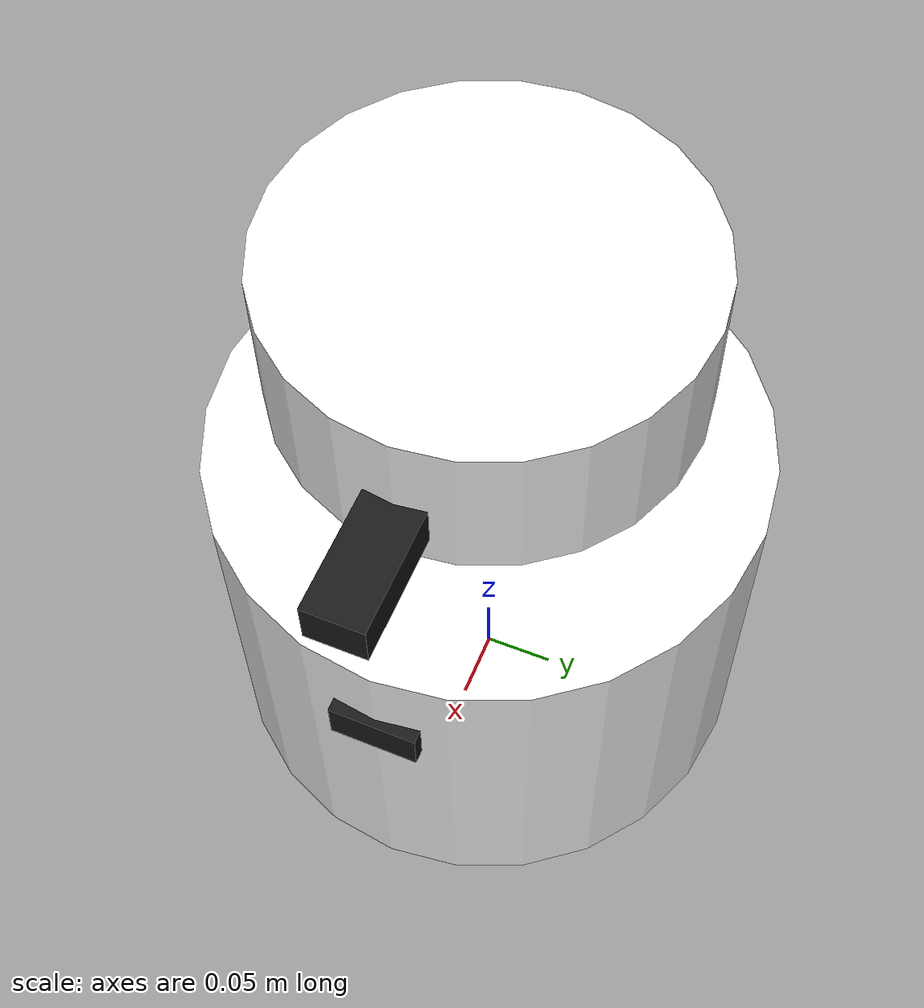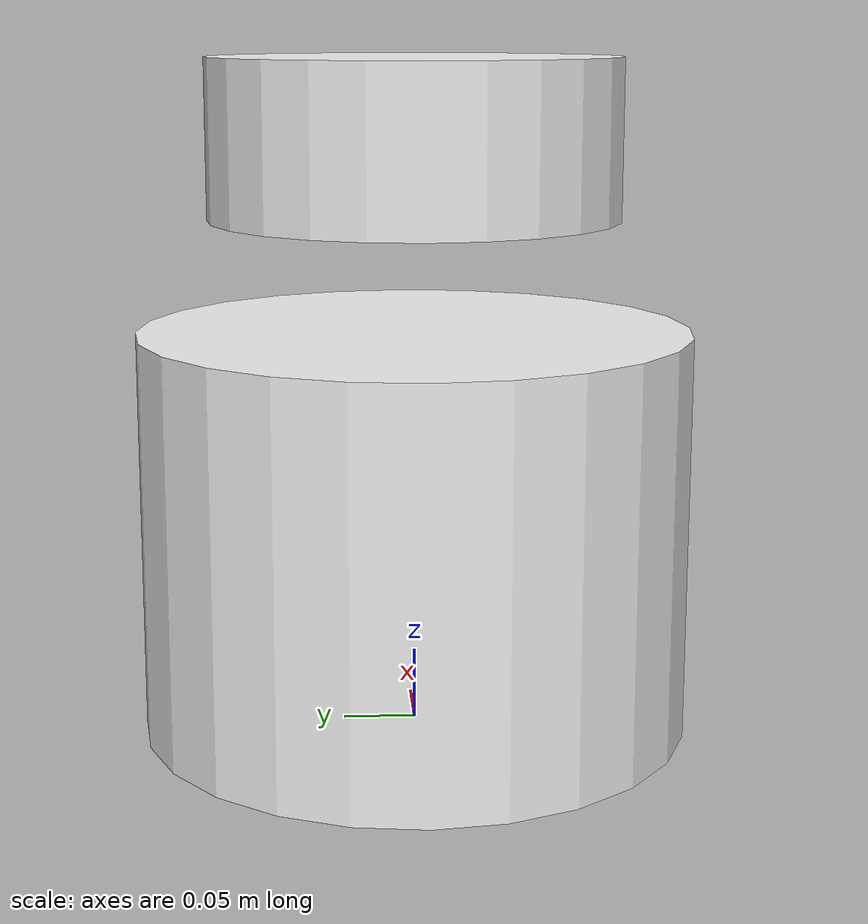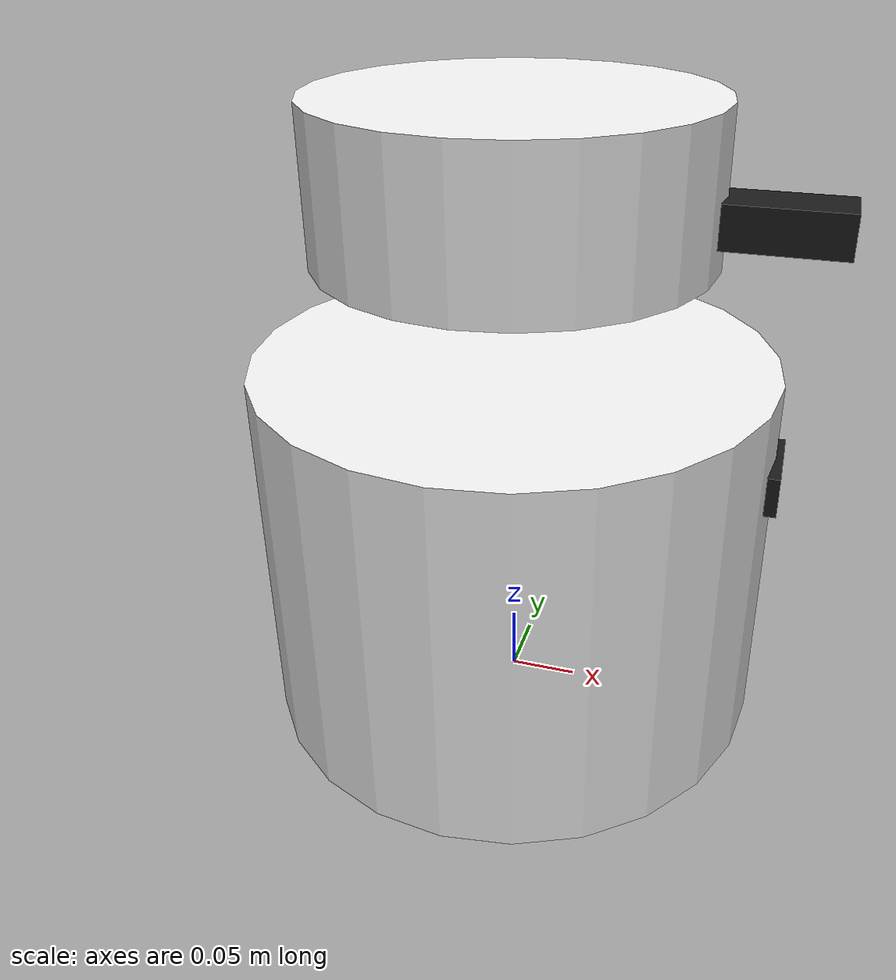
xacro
<?xml version="1.0"?>
<robot xmlns:xacro="http://www.ros.org/wiki/xacro" name="r2d2">

  <!-- Parameter -->
  <xacro:property name="chassis_radius"   value="0.19"/>   <!-- 38cm Durchmesser -->
  <xacro:property name="chassis_height"   value="0.28"/>   <!-- Chassis-Körper -->
  <xacro:property name="wheel_radius"     value="0.05"/>   <!-- 100mm Räder -->
  <xacro:property name="wheel_width"      value="0.026"/>  <!-- 26mm breit -->
  <xacro:property name="wheelbase"        value="0.30"/>   <!-- Spurbreite -->
  <xacro:property name="head_radius"      value="0.14"/>   <!-- Kopf-Kuppel -->
  <xacro:property name="head_height"      value="0.18"/>   <!-- Kopfhöhe -->
  <xacro:property name="neck_height"      value="0.04"/>   <!-- Übergang Chassis→Kopf -->

  <!-- Materialien -->
  <material name="white">
    <color rgba="0.95 0.95 0.95 1.0"/>
  </material>
  <material name="blue">
    <color rgba="0.1 0.3 0.7 1.0"/>
  </material>
  <material name="silver">
    <color rgba="0.75 0.75 0.75 1.0"/>
  </material>
  <material name="black">
    <color rgba="0.1 0.1 0.1 1.0"/>
  </material>
  <material name="red">
    <color rgba="0.8 0.1 0.1 1.0"/>
  </material>

  <!-- ============================================================
       BASE LINK – Referenzpunkt Mitte zwischen den Rädern, Bodenhöhe
       ============================================================ -->
  <link name="base_link"/>

  <!-- ============================================================
       CHASSIS
       ============================================================ -->
  <link name="base_chassis">
    <visual>
      <origin xyz="0 0 ${chassis_height/2}" rpy="0 0 0"/>
      <geometry>
        <cylinder radius="${chassis_radius}" length="${chassis_height}"/>
      </geometry>
      <material name="white"/>
    </visual>
    <collision>
      <origin xyz="0 0 ${chassis_height/2}" rpy="0 0 0"/>
      <geometry>
        <cylinder radius="${chassis_radius}" length="${chassis_height}"/>
      </geometry>
    </collision>
    <inertial>
      <mass value="3.0"/>
      <origin xyz="0 0 ${chassis_height/2}"/>
      <inertia ixx="0.05" ixy="0" ixz="0" iyy="0.05" iyz="0" izz="0.08"/>
    </inertial>
  </link>

  <joint name="base_chassis_joint" type="fixed">
    <parent link="base_link"/>
    <child link="base_chassis"/>
    <origin xyz="0 0 0" rpy="0 0 0"/>
  </joint>

  <!-- ============================================================
       RÄDER
       ============================================================ -->
  <!-- Linkes Rad -->
  <link name="left_wheel">
    <visual>
      <origin xyz="0 0 0" rpy="1.5708 0 0"/>
      <geometry>
        <cylinder radius="${wheel_radius}" length="${wheel_width}"/>
      </geometry>
      <material name="black"/>
    </visual>
    <collision>
      <origin xyz="0 0 0" rpy="1.5708 0 0"/>
      <geometry>
        <cylinder radius="${wheel_radius}" length="${wheel_width}"/>
      </geometry>
    </collision>
    <inertial>
      <mass value="0.2"/>
      <inertia ixx="0.0002" ixy="0" ixz="0" iyy="0.0002" iyz="0" izz="0.0004"/>
    </inertial>
  </link>

  <joint name="left_wheel_joint" type="continuous">
    <parent link="base_link"/>
    <child link="left_wheel"/>
    <origin xyz="0 ${wheelbase/2} ${wheel_radius}" rpy="0 0 0"/>
    <axis xyz="0 1 0"/>
  </joint>

  <!-- Rechtes Rad -->
  <link name="right_wheel">
    <visual>
      <origin xyz="0 0 0" rpy="1.5708 0 0"/>
      <geometry>
        <cylinder radius="${wheel_radius}" length="${wheel_width}"/>
      </geometry>
      <material name="black"/>
    </visual>
    <collision>
      <origin xyz="0 0 0" rpy="1.5708 0 0"/>
      <geometry>
        <cylinder radius="${wheel_radius}" length="${wheel_width}"/>
      </geometry>
    </collision>
    <inertial>
      <mass value="0.2"/>
      <inertia ixx="0.0002" ixy="0" ixz="0" iyy="0.0002" iyz="0" izz="0.0004"/>
    </inertial>
  </link>

  <joint name="right_wheel_joint" type="continuous">
    <parent link="base_link"/>
    <child link="right_wheel"/>
    <origin xyz="0 ${-wheelbase/2} ${wheel_radius}" rpy="0 0 0"/>
    <axis xyz="0 1 0"/>
  </joint>

  <!-- Stützrad vorne -->
  <link name="caster_wheel">
    <visual>
      <origin xyz="0 0 0" rpy="0 0 0"/>
      <geometry>
        <sphere radius="0.025"/>
      </geometry>
      <material name="silver"/>
    </visual>
    <collision>
      <geometry><sphere radius="0.025"/></geometry>
    </collision>
    <inertial>
      <mass value="0.05"/>
      <inertia ixx="0.00001" ixy="0" ixz="0" iyy="0.00001" iyz="0" izz="0.00001"/>
    </inertial>
  </link>

  <joint name="caster_joint" type="fixed">
    <parent link="base_link"/>
    <child link="caster_wheel"/>
    <origin xyz="0.15 0 0.025" rpy="0 0 0"/>
  </joint>

  <!-- ============================================================
       KOPF
       ============================================================ -->
  <link name="head_base">
    <visual>
      <origin xyz="0 0 ${head_height/2}" rpy="0 0 0"/>
      <geometry>
        <cylinder radius="${head_radius}" length="${head_height*0.6}"/>
      </geometry>
      <material name="white"/>
    </visual>
    <collision>
      <origin xyz="0 0 ${head_height/2}" rpy="0 0 0"/>
      <geometry>
        <cylinder radius="${head_radius}" length="${head_height*0.6}"/>
      </geometry>
    </collision>
    <inertial>
      <mass value="0.5"/>
      <origin xyz="0 0 ${head_height/2}"/>
      <inertia ixx="0.005" ixy="0" ixz="0" iyy="0.005" iyz="0" izz="0.008"/>
    </inertial>
  </link>

  <joint name="head_joint" type="revolute">
    <parent link="base_chassis"/>
    <child link="head_base"/>
    <origin xyz="0 0 ${chassis_height + neck_height}" rpy="0 0 0"/>
    <axis xyz="0 0 1"/>
    <limit lower="-3.14" upper="3.14" effort="1.0" velocity="1.0"/>
  </joint>

  <!-- ============================================================
       SENSOR FRAMES
       ============================================================ -->

  <!-- HMC5883L Kompass (oben im Chassis, I2C) -->
  <link name="compass_link"/>
  <joint name="compass_joint" type="fixed">
    <parent link="base_chassis"/>
    <child link="compass_link"/>
    <origin xyz="0.05 0 ${chassis_height - 0.02}" rpy="0 0 0"/>
  </joint>

  <!-- SRF02 Ultraschall Treppe (unten vorne, nach unten gerichtet) -->
  <link name="stair_sensor_link"/>
  <joint name="stair_sensor_joint" type="fixed">
    <parent link="base_chassis"/>
    <child link="stair_sensor_link"/>
    <origin xyz="0.17 0 0.03" rpy="0 1.5708 0"/>  <!-- nach unten zeigend -->
  </joint>

  <!-- SSD1306 OLED Display (vorne am Chassis) -->
  <link name="oled_link"/>
  <joint name="oled_joint" type="fixed">
    <parent link="base_chassis"/>
    <child link="oled_link"/>
    <origin xyz="${chassis_radius} 0 ${chassis_height*0.6}" rpy="0 0 0"/>
  </joint>

  <!-- ============================================================
       KAMERA FRAMES (ASUS Xtion Pro + USB Webcam)
       ============================================================ -->

  <!-- Xtion Pro (Tiefenkamera, vorne oben am Kopf) -->
  <link name="camera_link">
    <visual>
      <origin xyz="0 0 0" rpy="0 0 0"/>
      <geometry><box size="0.18 0.04 0.03"/></geometry>
      <material name="black"/>
    </visual>
  </link>

  <joint name="camera_joint" type="fixed">
    <parent link="head_base"/>
    <child link="camera_link"/>
    <origin xyz="${head_radius - 0.01} 0 ${head_height*0.4}" rpy="0 0 0"/>
  </joint>

  <!-- Webcam (vorne am Chassis) -->
  <link name="webcam_link">
    <visual>
      <origin xyz="0 0 0" rpy="0 0 0"/>
      <geometry><box size="0.03 0.06 0.03"/></geometry>
      <material name="black"/>
    </visual>
  </link>

  <joint name="webcam_joint" type="fixed">
    <parent link="base_chassis"/>
    <child link="webcam_link"/>
    <origin xyz="${chassis_radius - 0.01} 0 ${chassis_height*0.75}" rpy="0 0 0"/>
  </joint>

</robot>
